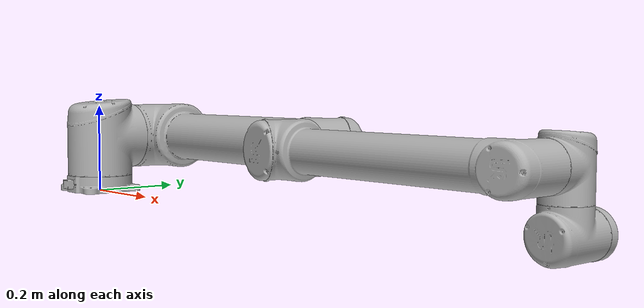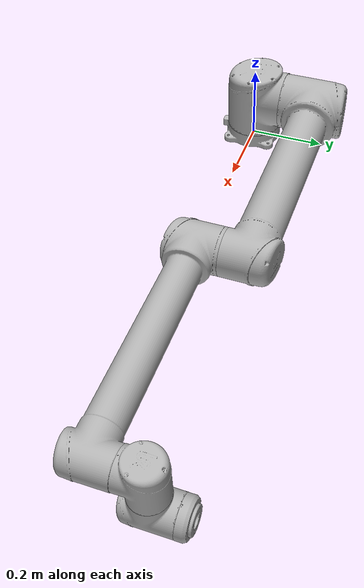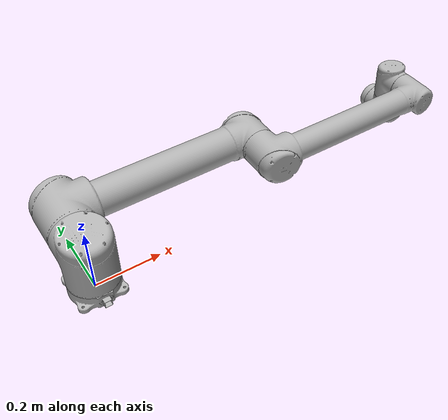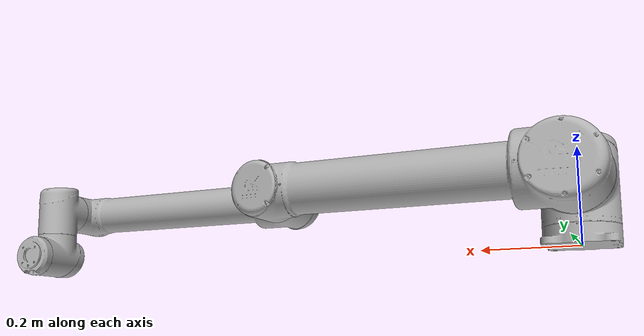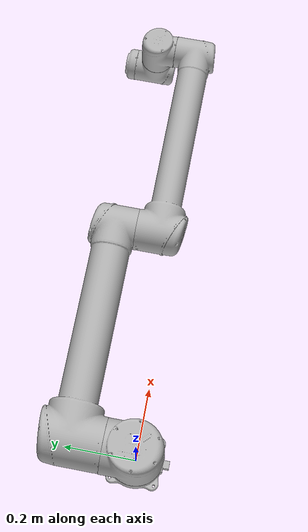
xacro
<?xml version="1.0" ?>
<!-- |    This document was autogenerated by xacro from /LabVir_moveit_ur5_lab2/catkin_ur5_ws/src/universal_robot/ur_description/urdf/ur10.xacro | -->
<!-- |    EDITING THIS FILE BY HAND IS NOT RECOMMENDED                                 | -->
<robot name="ur10_robot">
    <transmission name="shoulder_pan_trans">
        <type>transmission_interface/SimpleTransmission</type>
        <joint name="shoulder_pan_joint">
            <hardwareInterface>hardware_interface/EffortJointInterface</hardwareInterface>
        </joint>
        <actuator name="shoulder_pan_motor">
            <mechanicalReduction>1</mechanicalReduction>
            <hardwareInterface>hardware_interface/EffortJointInterface</hardwareInterface>
        </actuator>
    </transmission>
    <transmission name="shoulder_lift_trans">
        <type>transmission_interface/SimpleTransmission</type>
        <joint name="shoulder_lift_joint">
            <hardwareInterface>hardware_interface/EffortJointInterface</hardwareInterface>
        </joint>
        <actuator name="shoulder_lift_motor">
            <mechanicalReduction>1</mechanicalReduction>
            <hardwareInterface>hardware_interface/EffortJointInterface</hardwareInterface>
        </actuator>
    </transmission>
    <transmission name="elbow_trans">
        <type>transmission_interface/SimpleTransmission</type>
        <joint name="elbow_joint">
            <hardwareInterface>hardware_interface/EffortJointInterface</hardwareInterface>
        </joint>
        <actuator name="elbow_motor">
            <mechanicalReduction>1</mechanicalReduction>
            <hardwareInterface>hardware_interface/EffortJointInterface</hardwareInterface>
        </actuator>
    </transmission>
    <transmission name="wrist_1_trans">
        <type>transmission_interface/SimpleTransmission</type>
        <joint name="wrist_1_joint">
            <hardwareInterface>hardware_interface/EffortJointInterface</hardwareInterface>
        </joint>
        <actuator name="wrist_1_motor">
            <mechanicalReduction>1</mechanicalReduction>
            <hardwareInterface>hardware_interface/EffortJointInterface</hardwareInterface>
        </actuator>
    </transmission>
    <transmission name="wrist_2_trans">
        <type>transmission_interface/SimpleTransmission</type>
        <joint name="wrist_2_joint">
            <hardwareInterface>hardware_interface/EffortJointInterface</hardwareInterface>
        </joint>
        <actuator name="wrist_2_motor">
            <mechanicalReduction>1</mechanicalReduction>
            <hardwareInterface>hardware_interface/EffortJointInterface</hardwareInterface>
        </actuator>
    </transmission>
    <transmission name="wrist_3_trans">
        <type>transmission_interface/SimpleTransmission</type>
        <joint name="wrist_3_joint">
            <hardwareInterface>hardware_interface/EffortJointInterface</hardwareInterface>
        </joint>
        <actuator name="wrist_3_motor">
            <mechanicalReduction>1</mechanicalReduction>
            <hardwareInterface>hardware_interface/EffortJointInterface</hardwareInterface>
        </actuator>
    </transmission>
    <!-- links: main serial chain -->

    <!-- Fix the robot to the world -->
    <link name="world" />

    <joint name="fixed" type="fixed">
        <parent link="world" />
        <child link="base_link" />
    </joint>

    <link name="base_link" />
    <link name="base_link_inertia">
        <visual>
            <origin rpy="0 0 3.141592653589793" xyz="0 0 0" />
            <geometry>
                <mesh filename="package://ur_description/meshes/ur10/visual/base.dae" />
            </geometry>
            <material name="LightGrey">
                <color rgba="0.7 0.7 0.7 1.0" />
            </material>
        </visual>
        <collision>
            <origin rpy="0 0 3.141592653589793" xyz="0 0 0" />
            <geometry>
                <mesh filename="package://ur_description/meshes/ur10/collision/base.stl" />
            </geometry>
        </collision>
        <inertial>
            <mass value="4.0" />
            <origin rpy="0 0 0" xyz="0 0 0" />
            <inertia ixx="0.0061063308908" ixy="0.0" ixz="0.0" iyy="0.0061063308908" iyz="0.0" izz="0.01125" />
        </inertial>
    </link>
    <link name="shoulder_link">
        <visual>
            <origin rpy="0 0 3.141592653589793" xyz="0 0 0" />
            <geometry>
                <mesh filename="package://ur_description/meshes/ur10/visual/shoulder.dae" />
            </geometry>
            <material name="LightGrey">
                <color rgba="0.7 0.7 0.7 1.0" />
            </material>
        </visual>
        <collision>
            <origin rpy="0 0 3.141592653589793" xyz="0 0 0" />
            <geometry>
                <mesh filename="package://ur_description/meshes/ur10/collision/shoulder.stl" />
            </geometry>
        </collision>
        <inertial>
            <mass value="7.1" />
            <origin rpy="1.570796326794897 0 0" xyz="0.021 -0.027 0.0" />
            <inertia ixx="0.03408" ixy="2e-05" ixz="-0.00425" iyy="0.03529" iyz="8e-05" izz="0.02156" />
        </inertial>
    </link>
    <link name="upper_arm_link">
        <visual>
            <origin rpy="1.5707963267948966 0 -1.5707963267948966" xyz="0 0 0.220941" />
            <geometry>
                <mesh filename="package://ur_description/meshes/ur10/visual/upperarm.dae" />
            </geometry>
            <material name="LightGrey">
                <color rgba="0.7 0.7 0.7 1.0" />
            </material>
        </visual>
        <collision>
            <origin rpy="1.5707963267948966 0 -1.5707963267948966" xyz="0 0 0.220941" />
            <geometry>
                <mesh filename="package://ur_description/meshes/ur10/collision/upperarm.stl" />
            </geometry>
        </collision>
        <inertial>
            <mass value="12.7" />
            <origin rpy="0 0 0" xyz="-0.232 0.0 0.158" />
            <inertia ixx="0.02814" ixy="5e-05" ixz="-0.01561" iyy="0.77068" iyz="2e-05" izz="0.76943" />
        </inertial>
    </link>
    <link name="forearm_link">
        <visual>
            <origin rpy="1.5707963267948966 0 -1.5707963267948966" xyz="0 0 0.049042" />
            <geometry>
                <mesh filename="package://ur_description/meshes/ur10/visual/forearm.dae" />
            </geometry>
            <material name="LightGrey">
                <color rgba="0.7 0.7 0.7 1.0" />
            </material>
        </visual>
        <collision>
            <origin rpy="1.5707963267948966 0 -1.5707963267948966" xyz="0 0 0.049042" />
            <geometry>
                <mesh filename="package://ur_description/meshes/ur10/collision/forearm.stl" />
            </geometry>
        </collision>
        <inertial>
            <mass value="4.27" />
            <origin rpy="0 0 0" xyz="-0.3323 0.0 0.068" />
            <inertia ixx="0.01014" ixy="8e-05" ixz="0.00916" iyy="0.30928" iyz="0.0" izz="0.30646" />
        </inertial>
    </link>
    <link name="wrist_1_link">
        <visual>
            <!-- TODO: Move this to a parameter -->
            <origin rpy="1.5707963267948966 0 0" xyz="0 0 -0.1149" />
            <geometry>
                <mesh filename="package://ur_description/meshes/ur10/visual/wrist1.dae" />
            </geometry>
            <material name="LightGrey">
                <color rgba="0.7 0.7 0.7 1.0" />
            </material>
        </visual>
        <collision>
            <origin rpy="1.5707963267948966 0 0" xyz="0 0 -0.1149" />
            <geometry>
                <mesh filename="package://ur_description/meshes/ur10/collision/wrist1.stl" />
            </geometry>
        </collision>
        <inertial>
            <mass value="2.0" />
            <origin rpy="1.570796326794897 0 0" xyz="0.0 -0.018 0.007" />
            <inertia ixx="0.00296" ixy="-1e-05" ixz="0.0" iyy="0.00222" iyz="-0.00024" izz="0.00258" />
        </inertial>
    </link>
    <link name="wrist_2_link">
        <visual>
            <origin rpy="0 0 0" xyz="0 0 -0.1158" />
            <geometry>
                <mesh filename="package://ur_description/meshes/ur10/visual/wrist2.dae" />
            </geometry>
            <material name="LightGrey">
                <color rgba="0.7 0.7 0.7 1.0" />
            </material>
        </visual>
        <collision>
            <origin rpy="0 0 0" xyz="0 0 -0.1158" />
            <geometry>
                <mesh filename="package://ur_description/meshes/ur10/collision/wrist2.stl" />
            </geometry>
        </collision>
        <inertial>
            <mass value="2.0" />
            <origin rpy="-1.570796326794897 0 0" xyz="0.0 0.018 -0.007" />
            <inertia ixx="0.00296" ixy="-1e-05" ixz="0.0" iyy="0.00222" iyz="-0.00024" izz="0.00258" />
        </inertial>
    </link>
    <link name="wrist_3_link">
        <visual>
            <origin rpy="1.5707963267948966 0 0" xyz="0 0 -0.0922" />
            <geometry>
                <mesh filename="package://ur_description/meshes/ur10/visual/wrist3.dae" />
            </geometry>
            <material name="LightGrey">
                <color rgba="0.7 0.7 0.7 1.0" />
            </material>
        </visual>
        <collision>
            <origin rpy="1.5707963267948966 0 0" xyz="0 0 -0.0922" />
            <geometry>
                <mesh filename="package://ur_description/meshes/ur10/collision/wrist3.stl" />
            </geometry>
        </collision>
        <inertial>
            <mass value="0.365" />
            <origin rpy="0 0 0" xyz="0.0 0 -0.026" />
            <inertia ixx="0.0004" ixy="0.0" ixz="0.0" iyy="0.00041" iyz="0.0" izz="0.00034" />
        </inertial>
    </link>
    <!-- joints: main serial chain -->
    <joint name="base_link-base_link_inertia" type="fixed">
        <parent link="base_link" />
        <child link="base_link_inertia" />
        <origin rpy="0 0 3.141592653589793" xyz="0 0 0" />
    </joint>
    <joint name="shoulder_pan_joint" type="revolute">
        <parent link="base_link_inertia" />
        <child link="shoulder_link" />
        <origin rpy="0 0 0" xyz="0 0 0.1273" />
        <axis xyz="0 0 1" />
        <limit effort="330.0" lower="-6.283185307179586" upper="6.283185307179586" velocity="2.0943951023931953" />
        <dynamics damping="0" friction="0" />
    </joint>
    <joint name="shoulder_lift_joint" type="revolute">
        <parent link="shoulder_link" />
        <child link="upper_arm_link" />
        <origin rpy="1.570796327 0 0" xyz="0 0 0" />
        <axis xyz="0 0 1" />
        <limit effort="330.0" lower="-6.283185307179586" upper="6.283185307179586" velocity="2.0943951023931953" />
        <dynamics damping="0" friction="0" />
    </joint>
    <joint name="elbow_joint" type="revolute">
        <parent link="upper_arm_link" />
        <child link="forearm_link" />
        <origin rpy="0 0 0" xyz="-0.612 0 0" />
        <axis xyz="0 0 1" />
        <limit effort="150.0" lower="-3.141592653589793" upper="3.141592653589793" velocity="3.141592653589793" />
        <dynamics damping="0" friction="0" />
    </joint>
    <joint name="wrist_1_joint" type="revolute">
        <parent link="forearm_link" />
        <child link="wrist_1_link" />
        <origin rpy="0 0 0" xyz="-0.5723 0 0.163941" />
        <axis xyz="0 0 1" />
        <limit effort="56.0" lower="-6.283185307179586" upper="6.283185307179586" velocity="3.141592653589793" />
        <dynamics damping="0" friction="0" />
    </joint>
    <joint name="wrist_2_joint" type="revolute">
        <parent link="wrist_1_link" />
        <child link="wrist_2_link" />
        <origin rpy="1.570796327 0 0" xyz="0 -0.1157 -2.373046667922381e-11" />
        <axis xyz="0 0 1" />
        <limit effort="56.0" lower="-6.283185307179586" upper="6.283185307179586" velocity="3.141592653589793" />
        <dynamics damping="0" friction="0" />
    </joint>
    <joint name="wrist_3_joint" type="revolute">
        <parent link="wrist_2_link" />
        <child link="wrist_3_link" />
        <origin rpy="1.570796326589793 3.141592653589793 3.141592653589793" xyz="0 0.0922 -1.891053610911353e-11" />
        <axis xyz="0 0 1" />
        <limit effort="56.0" lower="-6.283185307179586" upper="6.283185307179586" velocity="3.141592653589793" />
        <dynamics damping="0" friction="0" />
    </joint>
    <!-- ROS-Industrial 'base' frame: base_link to UR 'Base' Coordinates transform -->
    <link name="base" />
    <joint name="base_link-base_fixed_joint" type="fixed">
        <origin rpy="0 0 3.141592653589793" xyz="0 0 0" />
        <parent link="base_link" />
        <child link="base" />
    </joint>
    <!-- ROS-Industrial 'flange' frame: attachment point for EEF models -->
    <link name="flange" />
    <joint name="wrist_3-flange" type="fixed">
        <parent link="wrist_3_link" />
        <child link="flange" />
        <origin rpy="0 -1.5707963267948966 -1.5707963267948966" xyz="0 0 0" />
    </joint>
    <!-- ROS-Industrial 'tool0' frame: all-zeros tool frame -->
    <link name="tool0" />
    <joint name="flange-tool0" type="fixed">
        <!-- default toolframe: X+ left, Y+ up, Z+ front -->
        <origin rpy="1.5707963267948966 0 1.5707963267948966" xyz="0 0 0" />
        <parent link="flange" />
        <child link="tool0" />
    </joint>
    <gazebo>
        <plugin name="gazebo_ros_control" filename="libgazebo_ros_control.so">
            <robotNamespace>/ur10</robotNamespace>
        </plugin>
    </gazebo>
</robot>
